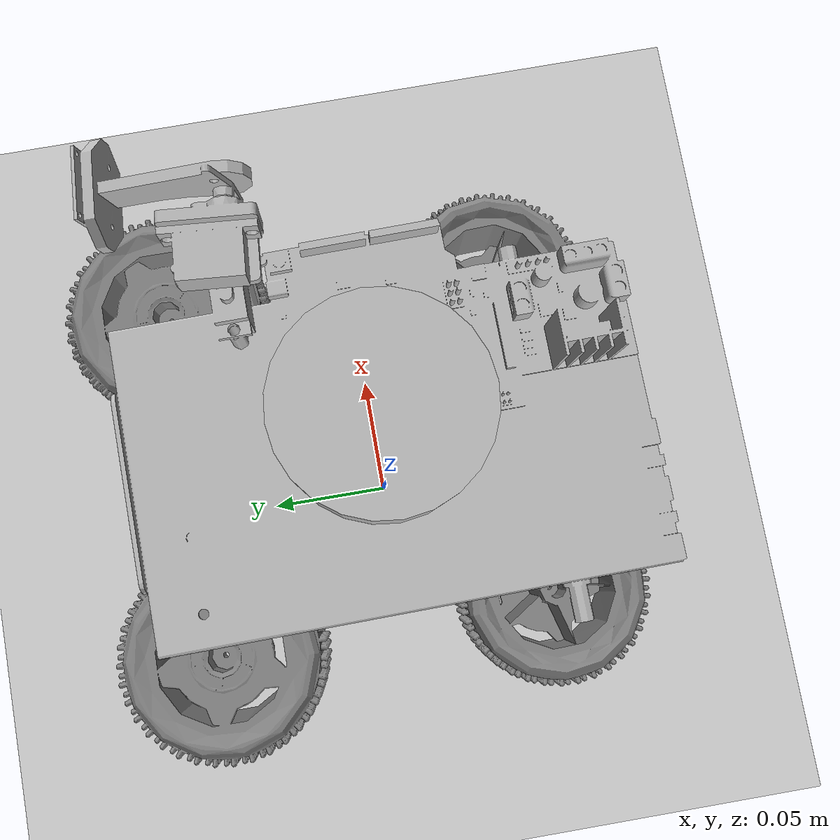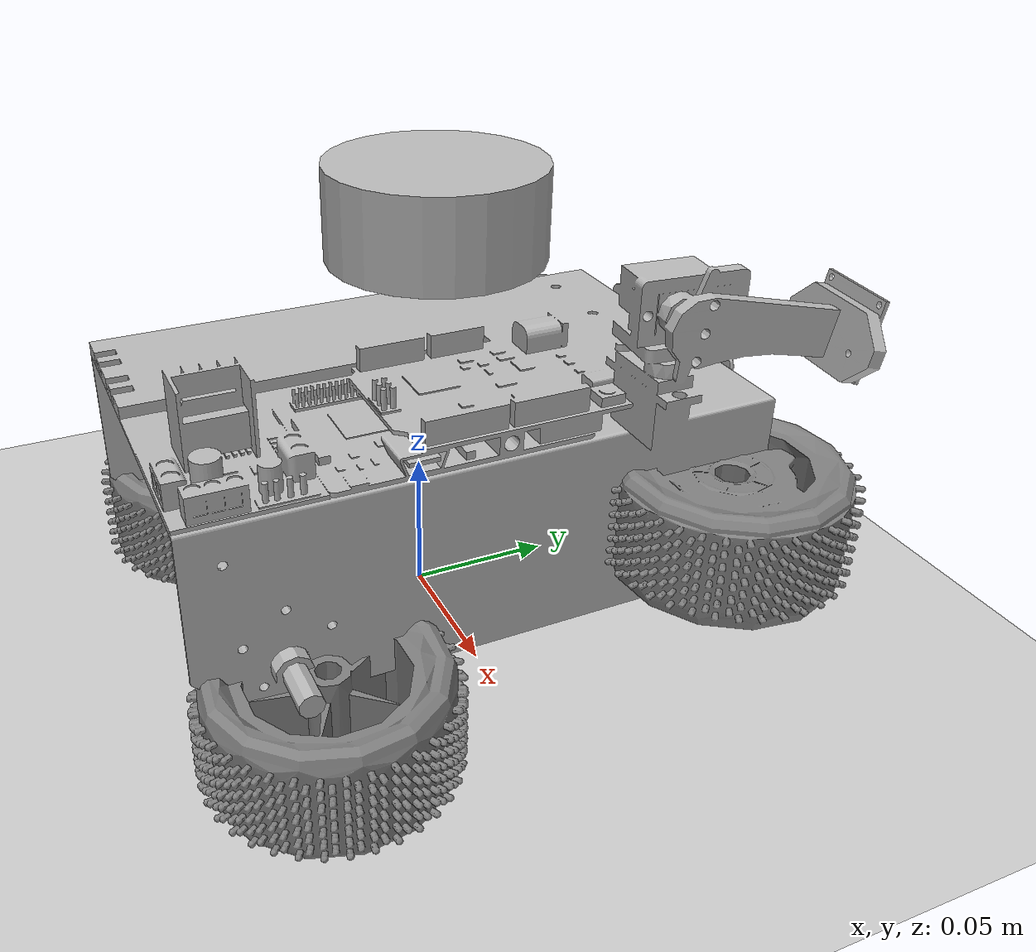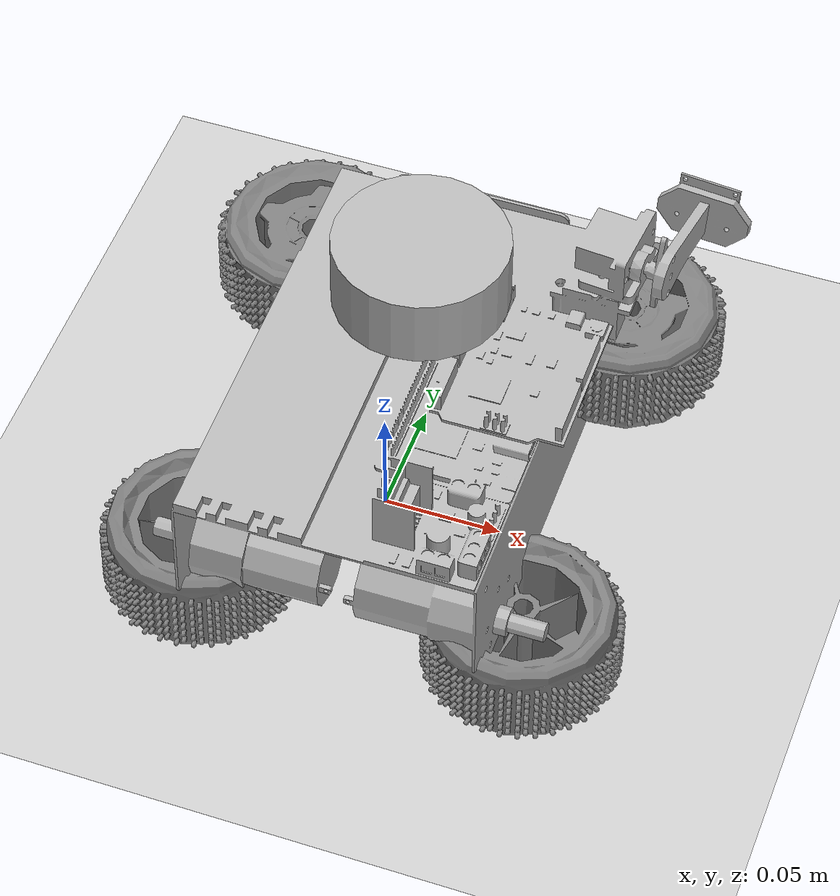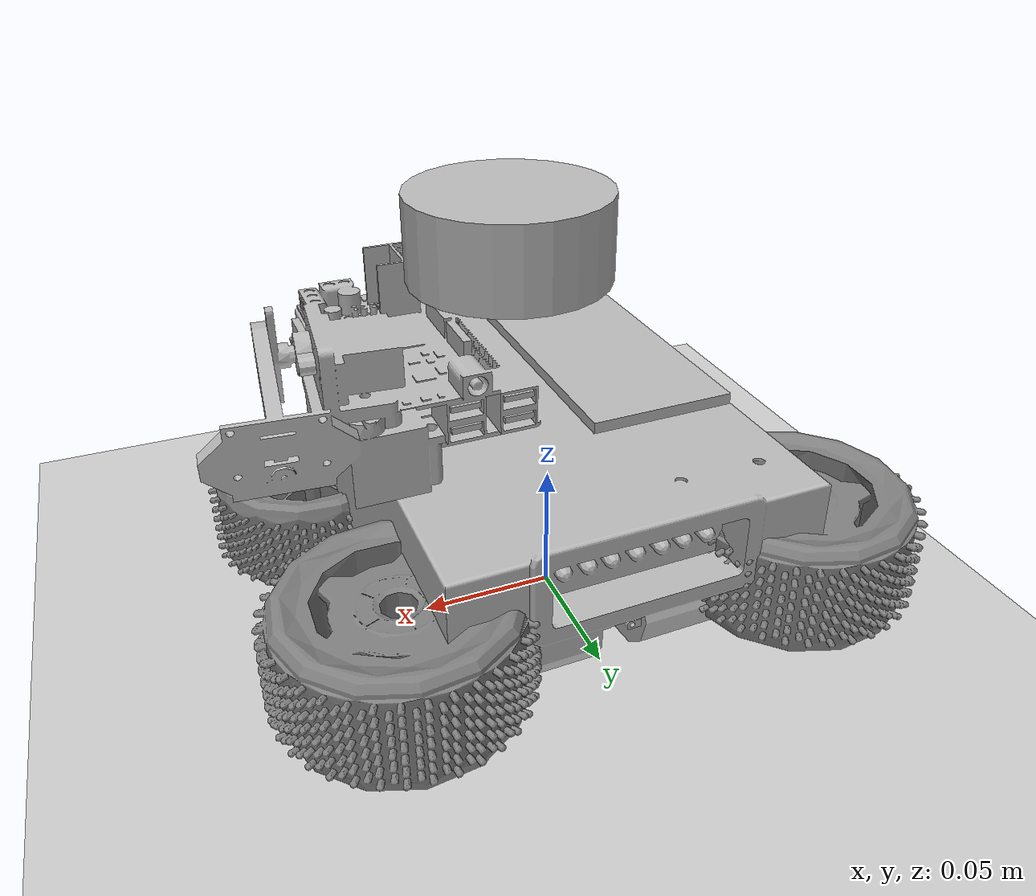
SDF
<sdf version="1.7">
 <world name="default">
  <gravity>0 0 -9.8</gravity>
  <magnetic_field>6e-06 2.3e-05 -4.2e-05</magnetic_field>
  <atmosphere type="adiabatic"/>
  <physics type="ode">
   <max_step_size>0.01</max_step_size>
   <real_time_factor>1</real_time_factor>
   <real_time_update_rate>100</real_time_update_rate>
  </physics>
  <light name="sun" type="directional">
   <pose>0 0 10 0 -0 0</pose>
   <diffuse>0.8 0.8 0.8 1</diffuse>
   <specular>0.2 0.2 0.2 1</specular>
   <attenuation>
    <range>1000</range>
    <constant>0.9</constant>
    <linear>0.01</linear>
    <quadratic>0.001</quadratic>
   </attenuation>
   <direction>-0.5 0.1 -0.9</direction>
   <spot><inner_angle>0</inner_angle><outer_angle>0</outer_angle><falloff>0</falloff></spot>
  </light>
  <model name="ground_plane">
   <static>1</static>
   <link name="link">
    <collision name="collision">
     <geometry><plane><normal>0 0 1</normal><size>100 100</size></plane></geometry>
     <surface><friction><ode><mu>100</mu><mu2>50</mu2></ode></friction></surface>
    </collision>
    <visual name="visual">
     <cast_shadows>0</cast_shadows>
     <geometry><plane><normal>0 0 1</normal><size>100 100</size></plane></geometry>
     <material>
      <script><uri>file://media/materials/scripts/gazebo.material</uri><name>Gazebo/Grey</name></script>
     </material>
    </visual>
   </link>
  </model>
  <model name="axioma_v2">
   <link name="base_link">
    <inertial>
     <mass>1</mass>
     <inertia><ixx>0.0227</ixx><ixy>0</ixy><ixz>0</ixz><iyy>0.0852</iyy><iyz>0</iyz><izz>0.1041</izz></inertia>
    </inertial>
    <collision name="base_link_collision">
     <geometry><mesh><scale>1 1 1</scale><uri>model://axioma_v2/meshes/collision/chasis.dae</uri></mesh></geometry>
    </collision>
    <visual name="base_link_visual">
     <geometry><mesh><scale>1 1 1</scale><uri>model://axioma_v2/meshes/visual/chasis.stl</uri></mesh></geometry>
    </visual>
   </link>
   <joint name="base_to_wheel1" type="revolute">
    <pose relative_to="base_link">0.06442 0.07385 0.04068 3.14152 0 3.14152</pose>
    <parent>base_link</parent>
    <child>wheel_1</child>
    <axis>
     <xyz>0 1 0</xyz>
     <limit><lower>-1e+16</lower><upper>1e+16</upper></limit>
     <dynamics><spring_reference>0</spring_reference><spring_stiffness>0</spring_stiffness></dynamics>
    </axis>
   </joint>
   <link name="wheel_1">
    <pose relative_to="base_to_wheel1">0 0 0 0 -0 0</pose>
    <inertial>
     <mass>0.1</mass>
     <inertia><ixx>0.0029</ixx><ixy>0</ixy><ixz>0</ixz><iyy>0.0029</iyy><iyz>0</iyz><izz>0.0056</izz></inertia>
    </inertial>
    <collision name="wheel_1_collision">
     <pose>0 0.02 0 -1.5707 -0 0</pose>
     <geometry><cylinder><radius>0.0381</radius><length>0.03</length></cylinder></geometry>
     <surface>
      <friction><ode><mu>1</mu><mu2>1</mu2><slip1>0</slip1><slip2>0</slip2></ode></friction>
      <contact>
       <ode>
        <soft_cfm>0</soft_cfm>
        <soft_erp>0.2</soft_erp>
        <kp>1e+13</kp>
        <kd>1</kd>
        <max_vel>0.01</max_vel>
        <min_depth>0.01</min_depth>
       </ode>
      </contact>
     </surface>
    </collision>
    <visual name="wheel_1_visual">
     <geometry><mesh><scale>1 1 1</scale><uri>model://axioma_v2/meshes/visual/llanta.stl</uri></mesh></geometry>
     <material>
      <diffuse>0.5 0.5 0.5 1</diffuse>
      <ambient>0 0 0 1</ambient>
      <specular>1 1 1 1</specular>
      <emissive>0 0 0 1</emissive>
     </material>
    </visual>
   </link>
   <joint name="base_to_wheel2" type="revolute">
    <pose relative_to="base_link">-0.071224 0.07385 0.04068 3.14152 0 3.14152</pose>
    <parent>base_link</parent>
    <child>wheel_2</child>
    <axis>
     <xyz>0 1 0</xyz>
     <limit><lower>-1e+16</lower><upper>1e+16</upper></limit>
     <dynamics><spring_reference>0</spring_reference><spring_stiffness>0</spring_stiffness></dynamics>
    </axis>
   </joint>
   <link name="wheel_2">
    <pose relative_to="base_to_wheel2">0 0 0 0 -0 0</pose>
    <inertial>
     <mass>0.1</mass>
     <inertia><ixx>0.0029</ixx><ixy>0</ixy><ixz>0</ixz><iyy>0.0029</iyy><iyz>0</iyz><izz>0.0056</izz></inertia>
    </inertial>
    <collision name="wheel_2_collision">
     <pose>0 0.02 0 -1.5707 -0 0</pose>
     <geometry><cylinder><radius>0.0381</radius><length>0.03</length></cylinder></geometry>
     <surface>
      <friction><ode><mu>1</mu><mu2>1</mu2><slip1>0</slip1><slip2>0</slip2></ode></friction>
      <contact>
       <ode>
        <soft_cfm>0</soft_cfm>
        <soft_erp>0.2</soft_erp>
        <kp>1e+13</kp>
        <kd>1</kd>
        <max_vel>0.01</max_vel>
        <min_depth>0.01</min_depth>
       </ode>
      </contact>
     </surface>
    </collision>
    <visual name="wheel_2_visual">
     <geometry><mesh><scale>1 1 1</scale><uri>model://axioma_v2/meshes/visual/llanta.stl</uri></mesh></geometry>
     <material>
      <diffuse>0.5 0.5 0.5 1</diffuse>
      <ambient>0 0 0 1</ambient>
      <specular>1 1 1 1</specular>
      <emissive>0 0 0 1</emissive>
     </material>
    </visual>
   </link>
   <joint name="base_to_wheel3" type="revolute">
    <pose relative_to="base_link">-0.071224 -0.0625 0.04068 0 -0 3.14159</pose>
    <parent>base_link</parent>
    <child>wheel_3</child>
    <axis>
     <xyz>0 -1 0</xyz>
     <limit><lower>-1e+16</lower><upper>1e+16</upper></limit>
     <dynamics><spring_reference>0</spring_reference><spring_stiffness>0</spring_stiffness></dynamics>
    </axis>
   </joint>
   <link name="wheel_3">
    <pose relative_to="base_to_wheel3">0 0 0 0 -0 0</pose>
    <inertial>
     <mass>0.1</mass>
     <inertia><ixx>0.0029</ixx><ixy>0</ixy><ixz>0</ixz><iyy>0.0029</iyy><iyz>0</iyz><izz>0.0056</izz></inertia>
    </inertial>
    <collision name="wheel_3_collision">
     <pose>0 0.02 0 -1.5707 -0 0</pose>
     <geometry><cylinder><radius>0.0381</radius><length>0.03</length></cylinder></geometry>
     <surface>
      <friction><ode><mu>1</mu><mu2>1</mu2><slip1>0</slip1><slip2>0</slip2></ode></friction>
      <contact>
       <ode>
        <soft_cfm>0</soft_cfm>
        <soft_erp>0.2</soft_erp>
        <kp>1e+13</kp>
        <kd>1</kd>
        <max_vel>0.01</max_vel>
        <min_depth>0.01</min_depth>
       </ode>
      </contact>
     </surface>
    </collision>
    <visual name="wheel_3_visual">
     <geometry><mesh><scale>1 1 1</scale><uri>model://axioma_v2/meshes/visual/llanta.stl</uri></mesh></geometry>
     <material>
      <diffuse>0.5 0.5 0.5 1</diffuse>
      <ambient>0 0 0 1</ambient>
      <specular>1 1 1 1</specular>
      <emissive>0 0 0 1</emissive>
     </material>
    </visual>
   </link>
   <joint name="base_to_wheel4" type="revolute">
    <pose relative_to="base_link">0.064423 -0.0625 0.04068 0 -0 3.14159</pose>
    <parent>base_link</parent>
    <child>wheel_4</child>
    <axis>
     <xyz>0 -1 0</xyz>
     <limit><lower>-1e+16</lower><upper>1e+16</upper></limit>
     <dynamics><spring_reference>0</spring_reference><spring_stiffness>0</spring_stiffness></dynamics>
    </axis>
   </joint>
   <link name="wheel_4">
    <pose relative_to="base_to_wheel4">0 0 0 0 -0 0</pose>
    <inertial>
     <mass>0.1</mass>
     <inertia><ixx>0.0029</ixx><ixy>0</ixy><ixz>0</ixz><iyy>0.0029</iyy><iyz>0</iyz><izz>0.0056</izz></inertia>
    </inertial>
    <collision name="wheel_4_collision">
     <pose>0 0.02 0 -1.5707 -0 0</pose>
     <geometry><cylinder><radius>0.0381</radius><length>0.03</length></cylinder></geometry>
     <surface>
      <friction><ode><mu>1</mu><mu2>1</mu2><slip1>0</slip1><slip2>0</slip2></ode></friction>
      <contact>
       <ode>
        <soft_cfm>0</soft_cfm>
        <soft_erp>0.2</soft_erp>
        <kp>1e+13</kp>
        <kd>1</kd>
        <max_vel>0.01</max_vel>
        <min_depth>0.01</min_depth>
       </ode>
      </contact>
     </surface>
    </collision>
    <visual name="wheel_4_visual">
     <geometry><mesh><scale>1 1 1</scale><uri>model://axioma_v2/meshes/visual/llanta.stl</uri></mesh></geometry>
     <material>
      <diffuse>0.5 0.5 0.5 1</diffuse>
      <ambient>0 0 0 1</ambient>
      <specular>1 1 1 1</specular>
      <emissive>0 0 0 1</emissive>
     </material>
    </visual>
   </link>
   <link name="base_scan">
    <pose>0 0 0.15 0 -0 0</pose>
    <inertial>
     <inertia><ixx>0.001</ixx><ixy>0</ixy><ixz>0</ixz><iyy>0.001</iyy><iyz>0</iyz><izz>0.001</izz></inertia>
     <mass>0.125</mass>
    </inertial>
    <collision name="lidar_sensor_collision">
     <geometry><cylinder><radius>0.035</radius><length>0.03</length></cylinder></geometry>
    </collision>
    <visual name="lidar_sensor_visual">
     <geometry><cylinder><radius>0.035</radius><length>0.03</length></cylinder></geometry>
    </visual>
    <sensor name="hls_lfcd_lds" type="ray">
     <always_on>1</always_on>
     <visualize>1</visualize>
     <update_rate>20</update_rate>
     <ray>
      <scan>
       <horizontal>
        <samples>360</samples>
        <resolution>2</resolution>
        <min_angle>0</min_angle>
        <max_angle>6.28</max_angle>
       </horizontal>
       <vertical><samples>1</samples><min_angle>0</min_angle><max_angle>0</max_angle></vertical>
      </scan>
      <range><min>0.12</min><max>3.5</max><resolution>0.02</resolution></range>
     </ray>
     <plugin name="laserscan" filename="libgazebo_ros_ray_sensor.so">
      <ros><remapping>~/out:=scan</remapping></ros>
      <output_type>sensor_msgs/LaserScan</output_type>
      <frame_name>base_link</frame_name>
     </plugin>
    </sensor>
   </link>
   <link name="imu_link">
    <pose>0.1 0.1 0.12 0 -0 0</pose>
    <sensor name="tb3_imu" type="imu">
     <always_on>1</always_on>
     <update_rate>50</update_rate>
     <imu>
      <angular_velocity>
       <x><noise type="gaussian"><mean>0</mean><stddev>0.0002</stddev></noise></x>
       <y><noise type="gaussian"><mean>0</mean><stddev>0.0002</stddev></noise></y>
       <z><noise type="gaussian"><mean>0</mean><stddev>0.0002</stddev></noise></z>
      </angular_velocity>
      <linear_acceleration>
       <x><noise type="gaussian"><mean>0</mean><stddev>0.017</stddev></noise></x>
       <y><noise type="gaussian"><mean>0</mean><stddev>0.017</stddev></noise></y>
       <z><noise type="gaussian"><mean>0</mean><stddev>0.017</stddev></noise></z>
      </linear_acceleration>
     </imu>
     <plugin name="turtlebot3_imu" filename="libgazebo_ros_imu_sensor.so">
      <ros><namespace>/axioma</namespace><remapping>~/out:=imu</remapping></ros>
     </plugin>
    </sensor>
    <inertial>
     <inertia><ixx>1</ixx><ixy>0</ixy><ixz>0</ixz><iyy>1</iyy><iyz>0</iyz><izz>1</izz></inertia>
     <mass>1</mass>
    </inertial>
   </link>
   <joint name="imu_joint" type="fixed">
    <parent>base_link</parent>
    <child>imu_link</child>
    <axis><xyz>0 0 0</xyz><limit><lower>-1e+16</lower><upper>1e+16</upper></limit></axis>
   </joint>
   <joint name="lidar_joint" type="fixed">
    <parent>base_link</parent>
    <child>base_scan</child>
    <axis><xyz>0 0 0</xyz><limit><lower>-1e+16</lower><upper>1e+16</upper></limit></axis>
   </joint>
   <plugin name="skid_steer_drive" filename="libgazebo_ros_diff_drive.so">
    <update_rate>20</update_rate>
    <num_wheel_pairs>2</num_wheel_pairs>
    <left_joint>base_to_wheel1</left_joint>
    <right_joint>base_to_wheel4</right_joint>
    <left_joint>base_to_wheel2</left_joint>
    <right_joint>base_to_wheel3</right_joint>
    <wheel_separation>0.1725</wheel_separation>
    <wheel_separation>0.1725</wheel_separation>
    <wheel_diameter>0.0762</wheel_diameter>
    <wheel_diameter>0.0762</wheel_diameter>
    <max_wheel_torque>20</max_wheel_torque>
    <max_wheel_acceleration>1</max_wheel_acceleration>
    <publish_odom>1</publish_odom>
    <publish_odom_tf>1</publish_odom_tf>
    <odometry_frame>odom</odometry_frame>
    <robot_base_frame>base_link</robot_base_frame>
   </plugin>
   <plugin name="scooby_joint_state" filename="libgazebo_ros_joint_state_publisher.so">
    <ros><remapping>~/out:=joint_states</remapping></ros>
    <update_rate>20</update_rate>
    <joint_name>base_to_wheel1</joint_name>
    <joint_name>base_to_wheel2</joint_name>
    <joint_name>base_to_wheel3</joint_name>
    <joint_name>base_to_wheel4</joint_name>
   </plugin>
   <pose>0.01433 0.000328 -0.002352 -0.00284 0.005646 0.01222</pose>
  </model>
  <scene><ambient>0.4 0.4 0.4 1</ambient><background>0.7 0.7 0.7 1</background><shadows>1</shadows></scene>
  <spherical_coordinates>
   <surface_model>EARTH_WGS84</surface_model>
   <latitude_deg>0</latitude_deg>
   <longitude_deg>0</longitude_deg>
   <elevation>0</elevation>
   <heading_deg>0</heading_deg>
  </spherical_coordinates>
 </world>
</sdf>
